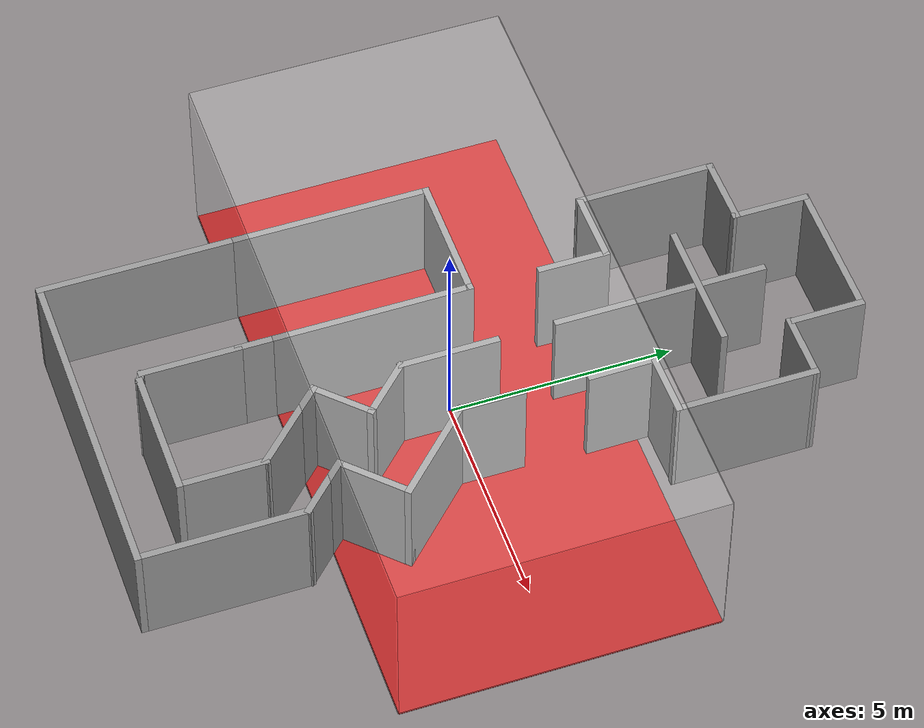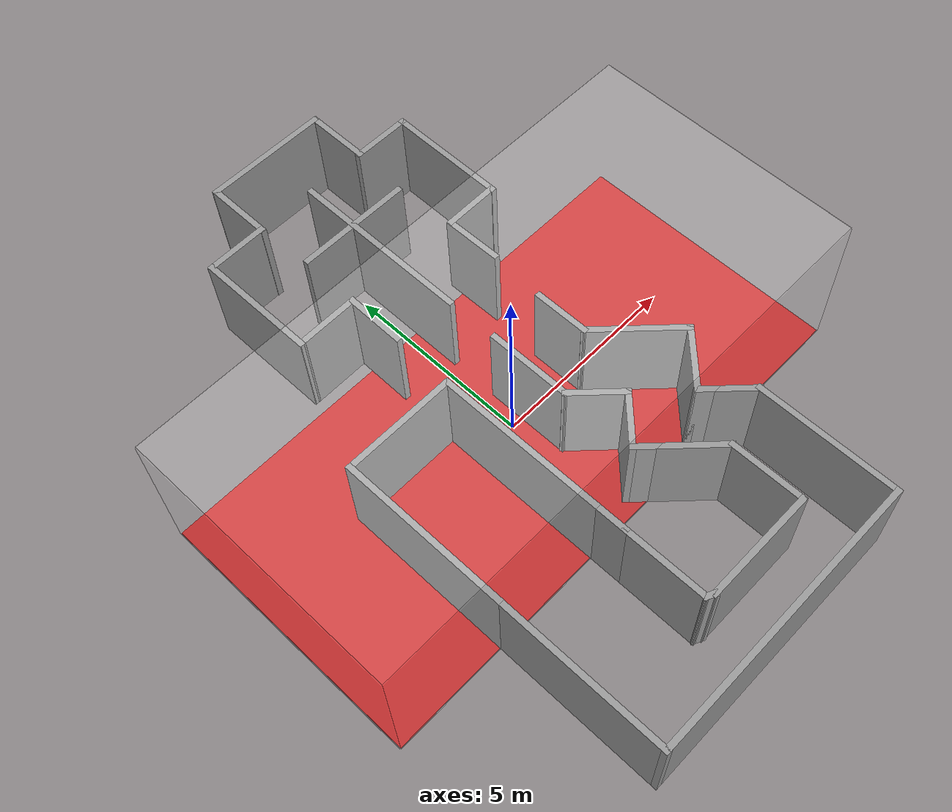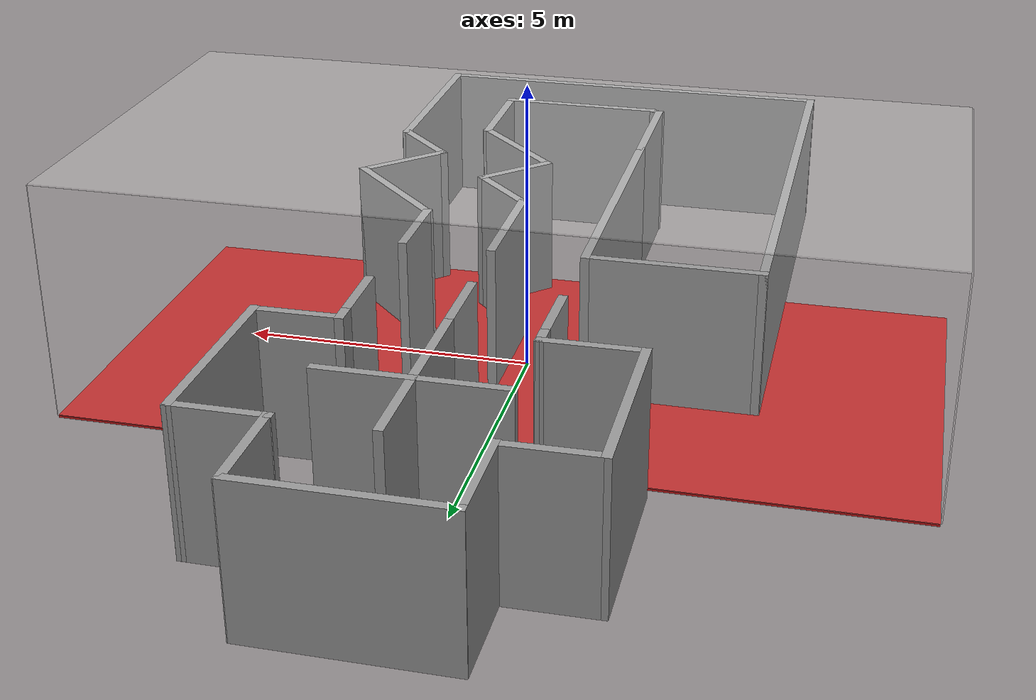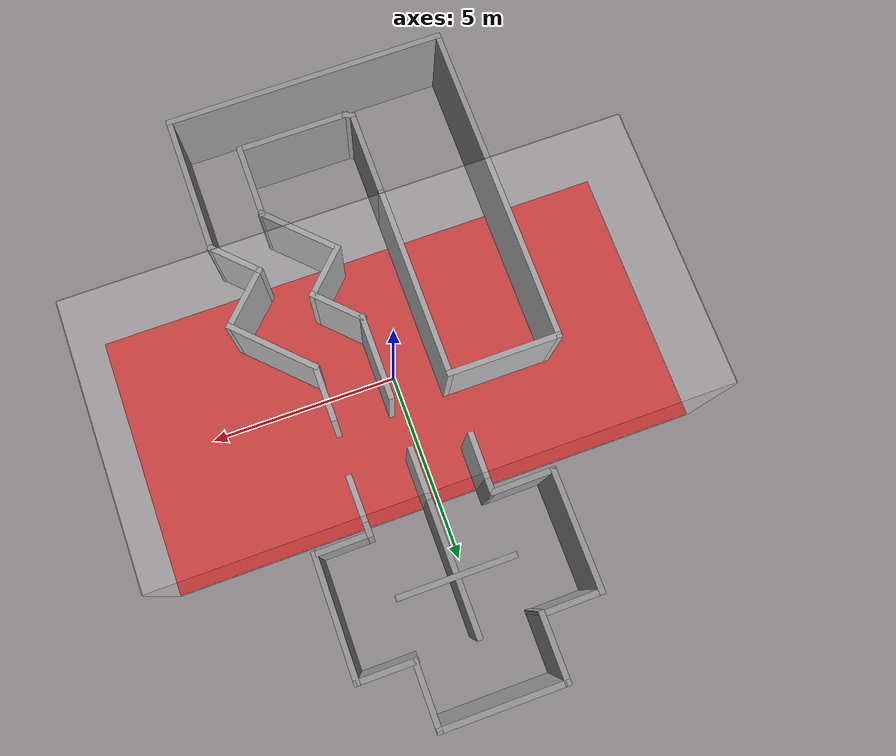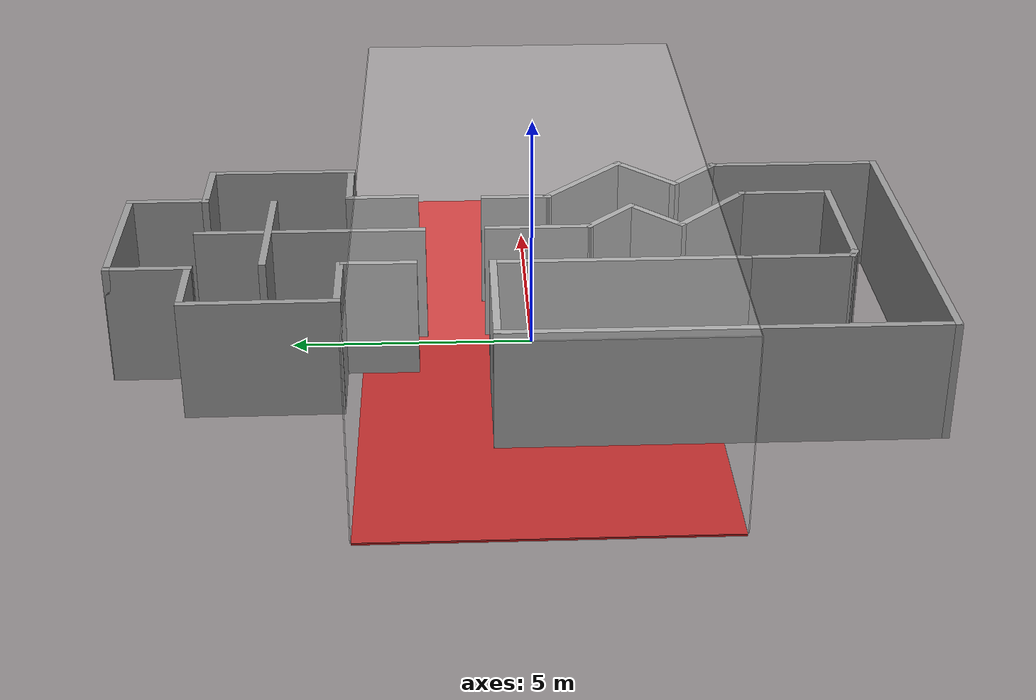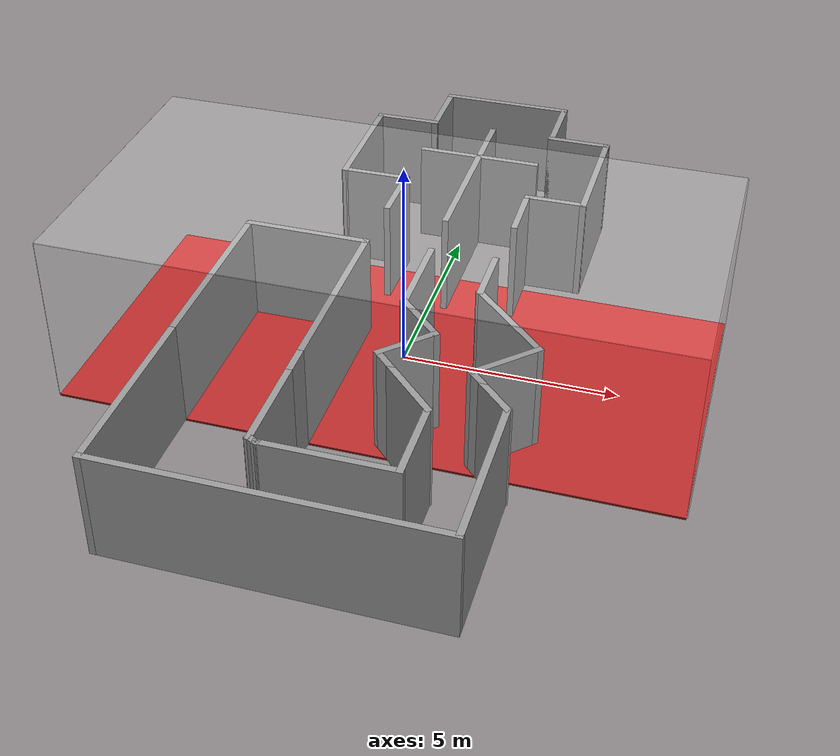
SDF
<sdf version="1.6">
 <world name="default">
  <light name="sun" type="directional">
   <pose>0 0 10 0 -0 0</pose>
   <diffuse>0.8 0.8 0.8 1</diffuse>
   <specular>0.2 0.2 0.2 1</specular>
   <attenuation>
    <range>1000</range>
    <constant>0.9</constant>
    <linear>0.01</linear>
    <quadratic>0.001</quadratic>
   </attenuation>
   <direction>-0.5 0.1 -0.9</direction>
  </light>
  <gravity>0 0 -9.8</gravity>
  <magnetic_field>6e-06 2.3e-05 -4.2e-05</magnetic_field>
  <atmosphere type="adiabatic"/>
  <physics name="default_physics" default="0" type="ode">
   <max_step_size>0.001</max_step_size>
   <real_time_factor>1</real_time_factor>
   <real_time_update_rate>1000</real_time_update_rate>
  </physics>
  <scene><ambient>0.4 0.4 0.4 1</ambient><background>0.7 0.7 0.7 1</background><shadows>1</shadows></scene>
  <spherical_coordinates>
   <surface_model>EARTH_WGS84</surface_model>
   <latitude_deg>0</latitude_deg>
   <longitude_deg>0</longitude_deg>
   <elevation>0</elevation>
   <heading_deg>0</heading_deg>
  </spherical_coordinates>
  <include><uri>model://navigation</uri></include>
  <include><uri>model://arena_walls</uri></include>
 </world>
</sdf>

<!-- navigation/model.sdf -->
<sdf version='1.6'>
  <model name='navigation'>
    <pose frame=''>-0.222576 0.346584 0 0 -0 0</pose>
    <link name='Wall_38'>
      <collision name='Wall_38_Collision'>
        <geometry>
          <box>
            <size>1.60654 0.15 2.5</size>
          </box>
        </geometry>
        <pose frame=''>0 0 1.25 0 -0 0</pose>
      </collision>
      <visual name='Wall_38_Visual'>
        <pose frame=''>0 0 1.25 0 -0 0</pose>
        <geometry>
          <box>
            <size>1.60654 0.15 2.5</size>
          </box>
        </geometry>
        <material>
          <script>
            <uri>file://media/materials/scripts/gazebo.material</uri>
            <name>Gazebo/Grey</name>
          </script>
          <ambient>1 1 1 1</ambient>
        </material>
        <meta>
          <layer>0</layer>
        </meta>
      </visual>
      <pose frame=''>-0.886672 2.79571 0 0 -0 1.56035</pose>
    </link>
    <link name='Wall_39'>
      <collision name='Wall_39_Collision'>
        <geometry>
          <box>
            <size>1.67403 0.15 2.5</size>
          </box>
        </geometry>
        <pose frame=''>0 0 1.25 0 -0 0</pose>
      </collision>
      <visual name='Wall_39_Visual'>
        <pose frame=''>0 0 1.25 0 -0 0</pose>
        <geometry>
          <box>
            <size>1.67403 0.15 2.5</size>
          </box>
        </geometry>
        <material>
          <script>
            <uri>file://media/materials/scripts/gazebo.material</uri>
            <name>Gazebo/Grey</name>
          </script>
          <ambient>1 1 1 1</ambient>
        </material>
        <meta>
          <layer>0</layer>
        </meta>
      </visual>
      <pose frame=''>-1.65626 3.51634 0 0 -0 -3.13161</pose>
    </link>
    <link name='Wall_40'>
      <collision name='Wall_40_Collision'>
        <geometry>
          <box>
            <size>3.14358 0.15 2.5</size>
          </box>
        </geometry>
        <pose frame=''>0 0 1.25 0 -0 0</pose>
      </collision>
      <visual name='Wall_40_Visual'>
        <pose frame=''>0 0 1.25 0 -0 0</pose>
        <geometry>
          <box>
            <size>3.14358 0.15 2.5</size>
          </box>
        </geometry>
        <material>
          <script>
            <uri>file://media/materials/scripts/gazebo.material</uri>
            <name>Gazebo/Grey</name>
          </script>
          <ambient>1 1 1 1</ambient>
        </material>
        <meta>
          <layer>0</layer>
        </meta>
      </visual>
      <pose frame=''>-2.44105 5.0055 0 0 -0 1.57588</pose>
    </link>
    <link name='Wall_41'>
      <collision name='Wall_41_Collision'>
        <geometry>
          <box>
            <size>1.62175 0.15 2.5</size>
          </box>
        </geometry>
        <pose frame=''>0 0 1.25 0 -0 0</pose>
      </collision>
      <visual name='Wall_41_Visual'>
        <pose frame=''>0 0 1.25 0 -0 0</pose>
        <geometry>
          <box>
            <size>1.62175 0.15 2.5</size>
          </box>
        </geometry>
        <material>
          <script>
            <uri>file://media/materials/scripts/gazebo.material</uri>
            <name>Gazebo/Grey</name>
          </script>
          <ambient>1 1 1 1</ambient>
        </material>
        <meta>
          <layer>0</layer>
        </meta>
      </visual>
      <pose frame=''>-1.69761 6.50988 0 0 -0 0.010334</pose>
    </link>
    <link name='Wall_42'>
      <collision name='Wall_42_Collision'>
        <geometry>
          <box>
            <size>1.75 0.15 2.5</size>
          </box>
        </geometry>
        <pose frame=''>0 0 1.25 0 -0 0</pose>
      </collision>
      <visual name='Wall_42_Visual'>
        <pose frame=''>0 0 1.25 0 -0 0</pose>
        <geometry>
          <box>
            <size>1.75 0.15 2.5</size>
          </box>
        </geometry>
        <material>
          <script>
            <uri>file://media/materials/scripts/gazebo.material</uri>
            <name>Gazebo/Grey</name>
          </script>
          <ambient>1 1 1 1</ambient>
        </material>
        <meta>
          <layer>0</layer>
        </meta>
      </visual>
      <pose frame=''>-0.961771 7.30227 0 0 -0 1.5708</pose>
    </link>
    <link name='Wall_43'>
      <collision name='Wall_43_Collision'>
        <geometry>
          <box>
            <size>3.24145 0.15 2.5</size>
          </box>
        </geometry>
        <pose frame=''>0 0 1.25 0 -0 0</pose>
      </collision>
      <visual name='Wall_43_Visual'>
        <pose frame=''>0 0 1.25 0 -0 0</pose>
        <geometry>
          <box>
            <size>3.24145 0.15 2.5</size>
          </box>
        </geometry>
        <material>
          <script>
            <uri>file://media/materials/scripts/gazebo.material</uri>
            <name>Gazebo/Grey</name>
          </script>
          <ambient>1 1 1 1</ambient>
        </material>
        <meta>
          <layer>0</layer>
        </meta>
      </visual>
      <pose frame=''>0.583954 8.11748 0 0 -0 0</pose>
    </link>
    <link name='Wall_44'>
      <collision name='Wall_44_Collision'>
        <geometry>
          <box>
            <size>1.75 0.15 2.5</size>
          </box>
        </geometry>
        <pose frame=''>0 0 1.25 0 -0 0</pose>
      </collision>
      <visual name='Wall_44_Visual'>
        <pose frame=''>0 0 1.25 0 -0 0</pose>
        <geometry>
          <box>
            <size>1.75 0.15 2.5</size>
          </box>
        </geometry>
        <material>
          <script>
            <uri>file://media/materials/scripts/gazebo.material</uri>
            <name>Gazebo/Grey</name>
          </script>
          <ambient>1 1 1 1</ambient>
        </material>
        <meta>
          <layer>0</layer>
        </meta>
      </visual>
      <pose frame=''>2.14489 7.31748 0 0 -0 -1.5708</pose>
    </link>
    <link name='Wall_45'>
      <collision name='Wall_45_Collision'>
        <geometry>
          <box>
            <size>1.57604 0.15 2.5</size>
          </box>
        </geometry>
        <pose frame=''>0 0 1.25 0 -0 0</pose>
      </collision>
      <visual name='Wall_45_Visual'>
        <pose frame=''>0 0 1.25 0 -0 0</pose>
        <geometry>
          <box>
            <size>1.57604 0.15 2.5</size>
          </box>
        </geometry>
        <material>
          <script>
            <uri>file://media/materials/scripts/gazebo.material</uri>
            <name>Gazebo/Grey</name>
          </script>
          <ambient>1 1 1 1</ambient>
        </material>
        <meta>
          <layer>0</layer>
        </meta>
      </visual>
      <pose frame=''>2.8427 6.51748 0 0 -0 0</pose>
    </link>
    <link name='Wall_46'>
      <collision name='Wall_46_Collision'>
        <geometry>
          <box>
            <size>3.19775 0.15 2.5</size>
          </box>
        </geometry>
        <pose frame=''>0 0 1.25 0 -0 0</pose>
      </collision>
      <visual name='Wall_46_Visual'>
        <pose frame=''>0 0 1.25 0 -0 0</pose>
        <geometry>
          <box>
            <size>3.19775 0.15 2.5</size>
          </box>
        </geometry>
        <material>
          <script>
            <uri>file://media/materials/scripts/gazebo.material</uri>
            <name>Gazebo/Grey</name>
          </script>
          <ambient>1 1 1 1</ambient>
        </material>
        <meta>
          <layer>0</layer>
        </meta>
      </visual>
      <pose frame=''>3.54812 4.99362 0 0 -0 -1.57579</pose>
    </link>
    <link name='Wall_47'>
      <collision name='Wall_47_Collision'>
        <geometry>
          <box>
            <size>1.50009 0.15 2.5</size>
          </box>
        </geometry>
        <pose frame=''>0 0 1.25 0 -0 0</pose>
      </collision>
      <visual name='Wall_47_Visual'>
        <pose frame=''>0 0 1.25 0 -0 0</pose>
        <geometry>
          <box>
            <size>1.50009 0.15 2.5</size>
          </box>
        </geometry>
        <material>
          <script>
            <uri>file://media/materials/scripts/gazebo.material</uri>
            <name>Gazebo/Grey</name>
          </script>
          <ambient>1 1 1 1</ambient>
        </material>
        <meta>
          <layer>0</layer>
        </meta>
      </visual>
      <pose frame=''>2.86551 3.47737 0 0 -0 -3.13033</pose>
    </link>
    <link name='Wall_48'>
      <collision name='Wall_48_Collision'>
        <geometry>
          <box>
            <size>1.55237 0.15 2.5</size>
          </box>
        </geometry>
        <pose frame=''>0 0 1.25 0 -0 0</pose>
      </collision>
      <visual name='Wall_48_Visual'>
        <pose frame=''>0 0 1.25 0 -0 0</pose>
        <geometry>
          <box>
            <size>1.55237 0.15 2.5</size>
          </box>
        </geometry>
        <material>
          <script>
            <uri>file://media/materials/scripts/gazebo.material</uri>
            <name>Gazebo/Grey</name>
          </script>
          <ambient>1 1 1 1</ambient>
        </material>
        <meta>
          <layer>0</layer>
        </meta>
      </visual>
      <pose frame=''>2.18291 2.76863 0 0 -0 -1.55995</pose>
    </link>
    <link name='Wall_50'>
      <collision name='Wall_50_Collision'>
        <geometry>
          <box>
            <size>4.75 0.15 2.5</size>
          </box>
        </geometry>
        <pose frame=''>0 0 1.25 0 -0 0</pose>
      </collision>
      <visual name='Wall_50_Visual'>
        <pose frame=''>0 0 1.25 0 -0 0</pose>
        <geometry>
          <box>
            <size>4.75 0.15 2.5</size>
          </box>
        </geometry>
        <material>
          <script>
            <uri>file://media/materials/scripts/gazebo.material</uri>
            <name>Gazebo/Grey</name>
          </script>
          <ambient>1 1 1 1</ambient>
        </material>
        <meta>
          <layer>0</layer>
        </meta>
      </visual>
      <pose frame=''>0.580972 4.20844 0 0 -0 -1.5708</pose>
    </link>
    <link name='Wall_52'>
      <collision name='Wall_52_Collision'>
        <geometry>
          <box>
            <size>3 0.15 2.5</size>
          </box>
        </geometry>
        <pose frame=''>0 0 1.25 0 -0 0</pose>
      </collision>
      <visual name='Wall_52_Visual'>
        <pose frame=''>0 0 1.25 0 -0 0</pose>
        <geometry>
          <box>
            <size>3 0.15 2.5</size>
          </box>
        </geometry>
        <material>
          <script>
            <uri>file://media/materials/scripts/gazebo.material</uri>
            <name>Gazebo/Grey</name>
          </script>
          <ambient>1 1 1 1</ambient>
        </material>
        <meta>
          <layer>0</layer>
        </meta>
      </visual>
      <pose frame=''>0.591558 5.06361 0 0 -0 0</pose>
    </link>
    <link name='Wall_54'>
      <collision name='Wall_54_Collision'>
        <geometry>
          <box>
            <size>1.5 0.15 2.5</size>
          </box>
        </geometry>
        <pose frame=''>0 0 1.25 0 -0 0</pose>
      </collision>
      <visual name='Wall_54_Visual'>
        <pose frame=''>0 0 1.25 0 -0 0</pose>
        <geometry>
          <box>
            <size>1.5 0.15 2.5</size>
          </box>
        </geometry>
        <material>
          <script>
            <uri>file://media/materials/scripts/gazebo.material</uri>
            <name>Gazebo/Grey</name>
          </script>
          <ambient>1 1 1 1</ambient>
        </material>
        <meta>
          <layer>0</layer>
        </meta>
      </visual>
      <pose frame=''>2.08616 -0.094815 0 0 -0 -1.5708</pose>
    </link>
    <link name='Wall_55'>
      <collision name='Wall_55_Collision'>
        <geometry>
          <box>
            <size>2.5 0.15 2.5</size>
          </box>
        </geometry>
        <pose frame=''>0 0 1.25 0 -0 0</pose>
      </collision>
      <visual name='Wall_55_Visual'>
        <pose frame=''>0 0 1.25 0 -0 0</pose>
        <geometry>
          <box>
            <size>2.5 0.15 2.5</size>
          </box>
        </geometry>
        <material>
          <script>
            <uri>file://media/materials/scripts/gazebo.material</uri>
            <name>Gazebo/Grey</name>
          </script>
          <ambient>1 1 1 1</ambient>
        </material>
        <meta>
          <layer>0</layer>
        </meta>
      </visual>
      <pose frame=''>2.91701 -1.60067 0 0 -0 -0.785398</pose>
    </link>
    <link name='Wall_56'>
      <collision name='Wall_56_Collision'>
        <geometry>
          <box>
            <size>1.75 0.15 2.5</size>
          </box>
        </geometry>
        <pose frame=''>0 0 1.25 0 -0 0</pose>
      </collision>
      <visual name='Wall_56_Visual'>
        <pose frame=''>0 0 1.25 0 -0 0</pose>
        <geometry>
          <box>
            <size>1.75 0.15 2.5</size>
          </box>
        </geometry>
        <material>
          <script>
            <uri>file://media/materials/scripts/gazebo.material</uri>
            <name>Gazebo/Grey</name>
          </script>
          <ambient>1 1 1 1</ambient>
        </material>
        <meta>
          <layer>0</layer>
        </meta>
      </visual>
      <pose frame=''>3.18217 -2.9972 0 0 -0 -2.35619</pose>
    </link>
    <link name='Wall_57'>
      <collision name='Wall_57_Collision'>
        <geometry>
          <box>
            <size>1.5 0.15 2.5</size>
          </box>
        </geometry>
        <pose frame=''>0 0 1.25 0 -0 0</pose>
      </collision>
      <visual name='Wall_57_Visual'>
        <pose frame=''>0 0 1.25 0 -0 0</pose>
        <geometry>
          <box>
            <size>1.5 0.15 2.5</size>
          </box>
        </geometry>
        <material>
          <script>
            <uri>file://media/materials/scripts/gazebo.material</uri>
            <name>Gazebo/Grey</name>
          </script>
          <ambient>1 1 1 1</ambient>
        </material>
        <meta>
          <layer>0</layer>
        </meta>
      </visual>
      <pose frame=''>3.09378 -4.04018 0 0 -0 -0.785398</pose>
    </link>
    <link name='Wall_59'>
      <collision name='Wall_59_Collision'>
        <geometry>
          <box>
            <size>2.25 0.15 2.5</size>
          </box>
        </geometry>
        <pose frame=''>0 0 1.25 0 -0 0</pose>
      </collision>
      <visual name='Wall_59_Visual'>
        <pose frame=''>0 0 1.25 0 -0 0</pose>
        <geometry>
          <box>
            <size>2.25 0.15 2.5</size>
          </box>
        </geometry>
        <material>
          <script>
            <uri>file://media/materials/scripts/gazebo.material</uri>
            <name>Gazebo/Grey</name>
          </script>
          <ambient>1 1 1 1</ambient>
        </material>
        <meta>
          <layer>0</layer>
        </meta>
      </visual>
      <pose frame=''>0.604955 -0.50949 0 0 -0 -1.5708</pose>
    </link>
    <link name='Wall_60'>
      <collision name='Wall_60_Collision'>
        <geometry>
          <box>
            <size>1.5 0.15 2.5</size>
          </box>
        </geometry>
        <pose frame=''>0 0 1.25 0 -0 0</pose>
      </collision>
      <visual name='Wall_60_Visual'>
        <pose frame=''>0 0 1.25 0 -0 0</pose>
        <geometry>
          <box>
            <size>1.5 0.15 2.5</size>
          </box>
        </geometry>
        <material>
          <script>
            <uri>file://media/materials/scripts/gazebo.material</uri>
            <name>Gazebo/Grey</name>
          </script>
          <ambient>1 1 1 1</ambient>
        </material>
        <meta>
          <layer>0</layer>
        </meta>
      </visual>
      <pose frame=''>1.08225 -2.03679 0 0 -0 -0.785398</pose>
    </link>
    <link name='Wall_61'>
      <collision name='Wall_61_Collision'>
        <geometry>
          <box>
            <size>1.5 0.15 2.5</size>
          </box>
        </geometry>
        <pose frame=''>0 0 1.25 0 -0 0</pose>
      </collision>
      <visual name='Wall_61_Visual'>
        <pose frame=''>0 0 1.25 0 -0 0</pose>
        <geometry>
          <box>
            <size>1.5 0.15 2.5</size>
          </box>
        </geometry>
        <material>
          <script>
            <uri>file://media/materials/scripts/gazebo.material</uri>
            <name>Gazebo/Grey</name>
          </script>
          <ambient>1 1 1 1</ambient>
        </material>
        <meta>
          <layer>0</layer>
        </meta>
      </visual>
      <pose frame=''>1.08225 -2.99138 0 0 -0 -2.35619</pose>
    </link>
    <link name='Wall_62'>
      <collision name='Wall_62_Collision'>
        <geometry>
          <box>
            <size>2.25 0.15 2.5</size>
          </box>
        </geometry>
        <pose frame=''>0 0 1.25 0 -0 0</pose>
      </collision>
      <visual name='Wall_62_Visual'>
        <pose frame=''>0 0 1.25 0 -0 0</pose>
        <geometry>
          <box>
            <size>2.25 0.15 2.5</size>
          </box>
        </geometry>
        <material>
          <script>
            <uri>file://media/materials/scripts/gazebo.material</uri>
            <name>Gazebo/Grey</name>
          </script>
          <ambient>1 1 1 1</ambient>
        </material>
        <meta>
          <layer>0</layer>
        </meta>
      </visual>
      <pose frame=''>1.34742 -4.21114 0 0 -0 -0.785398</pose>
    </link>
    <link name='Wall_64'>
      <collision name='Wall_64_Collision'>
        <geometry>
          <box>
            <size>2 0.15 2.5</size>
          </box>
        </geometry>
        <pose frame=''>0 0 1.25 0 -0 0</pose>
      </collision>
      <visual name='Wall_64_Visual'>
        <pose frame=''>0 0 1.25 0 -0 0</pose>
        <geometry>
          <box>
            <size>2 0.15 2.5</size>
          </box>
        </geometry>
        <material>
          <script>
            <uri>file://media/materials/scripts/gazebo.material</uri>
            <name>Gazebo/Grey</name>
          </script>
          <ambient>1 1 1 1</ambient>
        </material>
        <meta>
          <layer>0</layer>
        </meta>
      </visual>
      <pose frame=''>2.08988 -5.8786 0 0 -0 -1.5708</pose>
    </link>
    <link name='Wall_65'>
      <collision name='Wall_65_Collision'>
        <geometry>
          <box>
            <size>3 0.15 2.5</size>
          </box>
        </geometry>
        <pose frame=''>0 0 1.25 0 -0 0</pose>
      </collision>
      <visual name='Wall_65_Visual'>
        <pose frame=''>0 0 1.25 0 -0 0</pose>
        <geometry>
          <box>
            <size>3 0.15 2.5</size>
          </box>
        </geometry>
        <material>
          <script>
            <uri>file://media/materials/scripts/gazebo.material</uri>
            <name>Gazebo/Grey</name>
          </script>
          <ambient>1 1 1 1</ambient>
        </material>
        <meta>
          <layer>0</layer>
        </meta>
      </visual>
      <pose frame=''>0.664879 -6.8036 0 0 -0 3.14159</pose>
    </link>
    <link name='Wall_67'>
      <collision name='Wall_67_Collision'>
        <geometry>
          <box>
            <size>3.75 0.15 2.5</size>
          </box>
        </geometry>
        <pose frame=''>0 0 1.25 0 -0 0</pose>
      </collision>
      <visual name='Wall_67_Visual'>
        <pose frame=''>0 0 1.25 0 -0 0</pose>
        <geometry>
          <box>
            <size>3.75 0.15 2.5</size>
          </box>
        </geometry>
        <material>
          <script>
            <uri>file://media/materials/scripts/gazebo.material</uri>
            <name>Gazebo/Grey</name>
          </script>
          <ambient>1 1 1 1</ambient>
        </material>
        <meta>
          <layer>0</layer>
        </meta>
      </visual>
      <pose frame=''>3.57108 -6.31748 0 0 -0 -1.5708</pose>
    </link>
    <link name='Wall_68'>
      <collision name='Wall_68_Collision'>
        <geometry>
          <box>
            <size>7.5 0.15 2.5</size>
          </box>
        </geometry>
        <pose frame=''>0 0 1.25 0 -0 0</pose>
      </collision>
      <visual name='Wall_68_Visual'>
        <pose frame=''>0 0 1.25 0 -0 0</pose>
        <geometry>
          <box>
            <size>7.5 0.15 2.5</size>
          </box>
        </geometry>
        <material>
          <script>
            <uri>file://media/materials/scripts/gazebo.material</uri>
            <name>Gazebo/Grey</name>
          </script>
          <ambient>1 1 1 1</ambient>
        </material>
        <meta>
          <layer>0</layer>
        </meta>
      </visual>
      <pose frame=''>-0.103921 -8.11748 0 0 -0 3.14159</pose>
    </link>
    <link name='Wall_69'>
      <collision name='Wall_69_Collision'>
        <geometry>
          <box>
            <size>8.75 0.15 2.5</size>
          </box>
        </geometry>
        <pose frame=''>0 0 1.25 0 -0 0</pose>
      </collision>
      <visual name='Wall_69_Visual'>
        <pose frame=''>0 0 1.25 0 -0 0</pose>
        <geometry>
          <box>
            <size>8.75 0.15 2.5</size>
          </box>
        </geometry>
        <material>
          <script>
            <uri>file://media/materials/scripts/gazebo.material</uri>
            <name>Gazebo/Grey</name>
          </script>
          <ambient>1 1 1 1</ambient>
        </material>
        <meta>
          <layer>0</layer>
        </meta>
      </visual>
      <pose frame=''>-3.77892 -3.81748 0 0 -0 1.5708</pose>
    </link>
    <link name='Wall_71'>
      <collision name='Wall_71_Collision'>
        <geometry>
          <box>
            <size>3 0.15 2.5</size>
          </box>
        </geometry>
        <pose frame=''>0 0 1.25 0 -0 0</pose>
      </collision>
      <visual name='Wall_71_Visual'>
        <pose frame=''>0 0 1.25 0 -0 0</pose>
        <geometry>
          <box>
            <size>3 0.15 2.5</size>
          </box>
        </geometry>
        <material>
          <script>
            <uri>file://media/materials/scripts/gazebo.material</uri>
            <name>Gazebo/Grey</name>
          </script>
          <ambient>1 1 1 1</ambient>
        </material>
        <meta>
          <layer>0</layer>
        </meta>
      </visual>
      <pose frame=''>-2.35392 0.482519 0 0 -0 0</pose>
    </link>
    <link name='Wall_72'>
      <collision name='Wall_72_Collision'>
        <geometry>
          <box>
            <size>5.25 0.15 2.5</size>
          </box>
        </geometry>
        <pose frame=''>0 0 1.25 0 -0 0</pose>
      </collision>
      <visual name='Wall_72_Visual'>
        <pose frame=''>0 0 1.25 0 -0 0</pose>
        <geometry>
          <box>
            <size>5.25 0.15 2.5</size>
          </box>
        </geometry>
        <material>
          <script>
            <uri>file://media/materials/scripts/gazebo.material</uri>
            <name>Gazebo/Grey</name>
          </script>
          <ambient>1 1 1 1</ambient>
        </material>
        <meta>
          <layer>0</layer>
        </meta>
      </visual>
      <pose frame=''>-0.928921 -2.06748 0 0 -0 -1.5708</pose>
    </link>
    <link name='Wall_74'>
      <collision name='Wall_74_Collision'>
        <geometry>
          <box>
            <size>2.25 0.15 2.5</size>
          </box>
        </geometry>
        <pose frame=''>0 0 1.25 0 -0 0</pose>
      </collision>
      <visual name='Wall_74_Visual'>
        <pose frame=''>0 0 1.25 0 -0 0</pose>
        <geometry>
          <box>
            <size>2.25 0.15 2.5</size>
          </box>
        </geometry>
        <material>
          <script>
            <uri>file://media/materials/scripts/gazebo.material</uri>
            <name>Gazebo/Grey</name>
          </script>
          <ambient>1 1 1 1</ambient>
        </material>
        <meta>
          <layer>0</layer>
        </meta>
      </visual>
      <pose frame=''>-0.928921 -5.66748 0 0 -0 -1.5708</pose>
    </link>
    <link name='Wall_75'>
      <collision name='Wall_75_Collision'>
        <geometry>
          <box>
            <size>0.3395 0.15 2.5</size>
          </box>
        </geometry>
        <pose frame=''>0 0 1.25 0 -0 0</pose>
      </collision>
      <visual name='Wall_75_Visual'>
        <pose frame=''>0 0 1.25 0 -0 0</pose>
        <geometry>
          <box>
            <size>0.3395 0.15 2.5</size>
          </box>
        </geometry>
        <material>
          <script>
            <uri>file://media/materials/scripts/gazebo.material</uri>
            <name>Gazebo/Grey</name>
          </script>
          <ambient>1 1 1 1</ambient>
        </material>
        <meta>
          <layer>0</layer>
        </meta>
      </visual>
      <pose frame=''>-0.844521 -6.76054 0 0 -0 -0.471774</pose>
    </link>
    <static>1</static>
  </model>
</sdf>

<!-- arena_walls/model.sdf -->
<!-- models/arena_walls/model.sdf -->
<sdf version="1.9">
  <model name="arena_walls">
    <static>true</static>

    <!-- Floor -->
    <link name="floor">
      <collision name="floor_col">
        <geometry><box><size>14 7 0.05</size></box></geometry>
      </collision>
      <visual name="floor_vis">
        <geometry><box><size>14 7 0.05</size></box></geometry>
        <material>
          <ambient>0.8 0.1 0.1 1</ambient>  <!-- red carpet -->
          <diffuse>0.8 0.1 0.1 1</diffuse>
        </material>
      </visual>
      <pose>0 0 -0.025 0 0 0</pose>
    </link>

    <!-- Ceiling (transparent, for realism) -->
    <link name="ceiling">
      <pose>0 0 4 0 0 0</pose>
      <collision name="ceiling_col">
        <geometry><box><size>14 7 0.05</size></box></geometry>
      </collision>
      <visual name="ceiling_vis">
        <geometry><box><size>14 7 0.05</size></box></geometry>
        <material><ambient>1 1 1 0.1</ambient></material>
      </visual>
    </link>

    <!-- North wall -->
    <link name="wall_north">
      <pose>0 3.5 2 0 0 0</pose>
      <collision name="col">
        <geometry><box><size>14 0.05 4</size></box></geometry>
      </collision>
      <visual name="vis">
        <geometry><box><size>14 0.05 4</size></box></geometry>
        <material><ambient>0.9 0.9 0.9 0.1</ambient><diffuse>0.9 0.9 0.9 0.1</diffuse></material>
      </visual>
    </link>

    <!-- South wall -->
    <link name="wall_south">
      <pose>0 -3.5 2 0 0 0</pose>
      <collision name="col">
        <geometry><box><size>14 0.05 4</size></box></geometry>
      </collision>
      <visual name="vis">
        <geometry><box><size>14 0.05 4</size></box></geometry>
        <material><ambient>0.9 0.9 0.9 0.1</ambient><diffuse>0.9 0.9 0.9 0.1</diffuse></material>
      </visual>
    </link>

    <!-- East wall -->
    <link name="wall_east">
      <pose>7 0 2 0 0 0</pose>
      <collision name="col">
        <geometry><box><size>0.05 7 4</size></box></geometry>
      </collision>
      <visual name="vis">
        <geometry><box><size>0.05 7 4</size></box></geometry>
        <material><ambient>0.9 0.9 0.9 0.1</ambient><diffuse>0.9 0.9 0.9 0.1</diffuse></material>
      </visual>
    </link>

    <!-- West wall -->
    <link name="wall_west">
      <pose>-7 0 2 0 0 0</pose>
      <collision name="col">
        <geometry><box><size>0.05 7 4</size></box></geometry>
      </collision>
      <visual name="vis">
        <geometry><box><size>0.05 7 4</size></box></geometry>
        <material><ambient>0.9 0.9 0.9 0.1</ambient><diffuse>0.9 0.9 0.9 0.1</diffuse></material>
      </visual>
    </link>

  </model>
</sdf>
